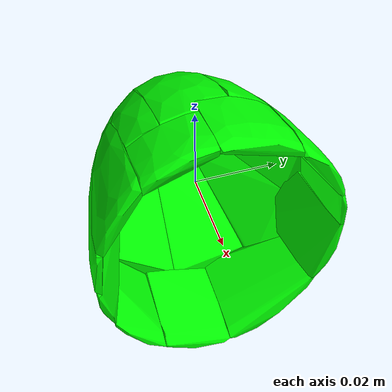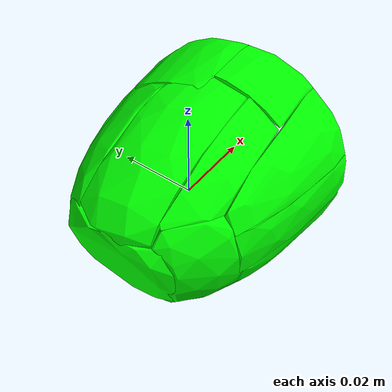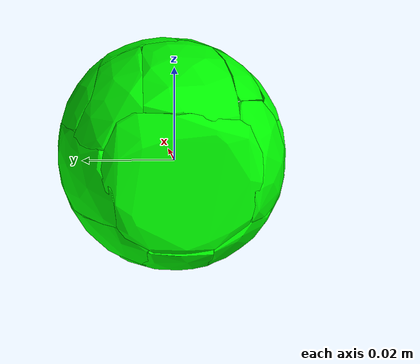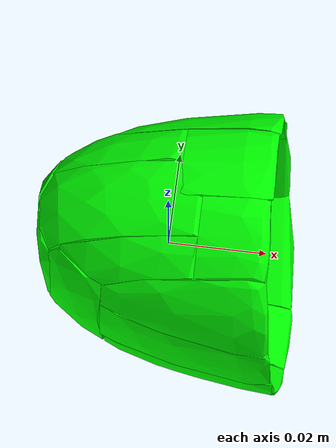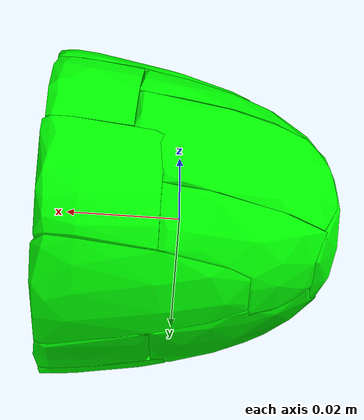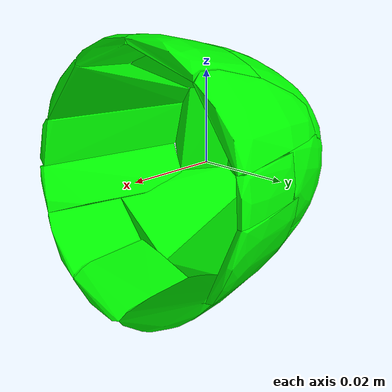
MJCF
<mujoco model="Glassbowl">
  <asset>
    <mesh file="meshes/Glassbowl/Glassbowl_0.stl" name="Glassbowl_0" scale="3 1.25 1.25"/>
    <mesh file="meshes/Glassbowl/Glassbowl_1.stl" name="Glassbowl_1" scale="3 1.25 1.25"/>
    <mesh file="meshes/Glassbowl/Glassbowl_2.stl" name="Glassbowl_2" scale="3 1.25 1.25"/>
    <mesh file="meshes/Glassbowl/Glassbowl_3.stl" name="Glassbowl_3" scale="3 1.25 1.25"/>
    <mesh file="meshes/Glassbowl/Glassbowl_4.stl" name="Glassbowl_4" scale="3 1.25 1.25"/>
    <mesh file="meshes/Glassbowl/Glassbowl_5.stl" name="Glassbowl_5" scale="3 1.25 1.25"/>
    <mesh file="meshes/Glassbowl/Glassbowl_6.stl" name="Glassbowl_6" scale="3 1.25 1.25"/>
    <mesh file="meshes/Glassbowl/Glassbowl_7.stl" name="Glassbowl_7" scale="3 1.25 1.25"/>
    <mesh file="meshes/Glassbowl/Glassbowl_8.stl" name="Glassbowl_8" scale="3 1.25 1.25"/>
    <mesh file="meshes/Glassbowl/Glassbowl_9.stl" name="Glassbowl_9" scale="3 1.25 1.25"/>
    <mesh file="meshes/Glassbowl/Glassbowl_10.stl" name="Glassbowl_10" scale="3 1.25 1.25"/>
    <mesh file="meshes/Glassbowl/Glassbowl_11.stl" name="Glassbowl_11" scale="3 1.25 1.25"/>
    <mesh file="meshes/Glassbowl/Glassbowl_12.stl" name="Glassbowl_12" scale="3 1.25 1.25"/>
    <mesh file="meshes/Glassbowl/Glassbowl_13.stl" name="Glassbowl_13" scale="3 1.25 1.25"/>
    <mesh file="meshes/Glassbowl/Glassbowl_14.stl" name="Glassbowl_14" scale="3 1.25 1.25"/>
    <mesh file="meshes/Glassbowl/Glassbowl_15.stl" name="Glassbowl_15" scale="3 1.25 1.25"/>
    <mesh file="meshes/Glassbowl/Glassbowl_16.stl" name="Glassbowl_16" scale="3 1.25 1.25"/>
    <mesh file="meshes/Glassbowl/Glassbowl_17.stl" name="Glassbowl_17" scale="3 1.25 1.25"/>
    <mesh file="meshes/Glassbowl/Glassbowl_18.stl" name="Glassbowl_18" scale="3 1.25 1.25"/>
    <mesh file="meshes/Glassbowl/Glassbowl_19.stl" name="Glassbowl_19" scale="3 1.25 1.25"/>
  </asset>
  <worldbody>
    <body>
      <body name="collision">
        <geom condim="4" density="100" friction="1.8 0.3 0.1" group="1" mesh="Glassbowl_0" pos="0 0 0" rgba="0 1 0 1" solimp="0.998 0.998 0.001" solref="0.002 1" type="mesh"/>
        <geom condim="4" density="100" friction="1.8 0.3 0.1" group="1" mesh="Glassbowl_1" pos="0 0 0" rgba="0 1 0 1" solimp="0.998 0.998 0.001" solref="0.002 1" type="mesh"/>
        <geom condim="4" density="100" friction="1.8 0.3 0.1" group="1" mesh="Glassbowl_2" pos="0 0 0" rgba="0 1 0 1" solimp="0.998 0.998 0.001" solref="0.002 1" type="mesh"/>
        <geom condim="4" density="100" friction="1.8 0.3 0.1" group="1" mesh="Glassbowl_3" pos="0 0 0" rgba="0 1 0 1" solimp="0.998 0.998 0.001" solref="0.002 1" type="mesh"/>
        <geom condim="4" density="100" friction="1.8 0.3 0.1" group="1" mesh="Glassbowl_4" pos="0 0 0" rgba="0 1 0 1" solimp="0.998 0.998 0.001" solref="0.002 1" type="mesh"/>
        <geom condim="4" density="100" friction="1.8 0.3 0.1" group="1" mesh="Glassbowl_5" pos="0 0 0" rgba="0 1 0 1" solimp="0.998 0.998 0.001" solref="0.002 1" type="mesh"/>
        <geom condim="4" density="100" friction="1.8 0.3 0.1" group="1" mesh="Glassbowl_6" pos="0 0 0" rgba="0 1 0 1" solimp="0.998 0.998 0.001" solref="0.002 1" type="mesh"/>
        <geom condim="4" density="100" friction="1.8 0.3 0.1" group="1" mesh="Glassbowl_7" pos="0 0 0" rgba="0 1 0 1" solimp="0.998 0.998 0.001" solref="0.002 1" type="mesh"/>
        <geom condim="4" density="100" friction="1.8 0.3 0.1" group="1" mesh="Glassbowl_8" pos="0 0 0" rgba="0 1 0 1" solimp="0.998 0.998 0.001" solref="0.002 1" type="mesh"/>
        <geom condim="4" density="100" friction="1.8 0.3 0.1" group="1" mesh="Glassbowl_9" pos="0 0 0" rgba="0 1 0 1" solimp="0.998 0.998 0.001" solref="0.002 1" type="mesh"/>
        <geom condim="4" density="100" friction="1.8 0.3 0.1" group="1" mesh="Glassbowl_10" pos="0 0 0" rgba="0 1 0 1" solimp="0.998 0.998 0.001" solref="0.002 1" type="mesh"/>
        <geom condim="4" density="100" friction="1.8 0.3 0.1" group="1" mesh="Glassbowl_11" pos="0 0 0" rgba="0 1 0 1" solimp="0.998 0.998 0.001" solref="0.002 1" type="mesh"/>
        <geom condim="4" density="100" friction="1.8 0.3 0.1" group="1" mesh="Glassbowl_12" pos="0 0 0" rgba="0 1 0 1" solimp="0.998 0.998 0.001" solref="0.002 1" type="mesh"/>
        <geom condim="4" density="100" friction="1.8 0.3 0.1" group="1" mesh="Glassbowl_13" pos="0 0 0" rgba="0 1 0 1" solimp="0.998 0.998 0.001" solref="0.002 1" type="mesh"/>
        <geom condim="4" density="100" friction="1.8 0.3 0.1" group="1" mesh="Glassbowl_14" pos="0 0 0" rgba="0 1 0 1" solimp="0.998 0.998 0.001" solref="0.002 1" type="mesh"/>
        <geom condim="4" density="100" friction="1.8 0.3 0.1" group="1" mesh="Glassbowl_15" pos="0 0 0" rgba="0 1 0 1" solimp="0.998 0.998 0.001" solref="0.002 1" type="mesh"/>
        <geom condim="4" density="100" friction="1.8 0.3 0.1" group="1" mesh="Glassbowl_16" pos="0 0 0" rgba="0 1 0 1" solimp="0.998 0.998 0.001" solref="0.002 1" type="mesh"/>
        <geom condim="4" density="100" friction="1.8 0.3 0.1" group="1" mesh="Glassbowl_17" pos="0 0 0" rgba="0 1 0 1" solimp="0.998 0.998 0.001" solref="0.002 1" type="mesh"/>
        <geom condim="4" density="100" friction="1.8 0.3 0.1" group="1" mesh="Glassbowl_18" pos="0 0 0" rgba="0 1 0 1" solimp="0.998 0.998 0.001" solref="0.002 1" type="mesh"/>
        <geom condim="4" density="100" friction="1.8 0.3 0.1" group="1" mesh="Glassbowl_19" pos="0 0 0" rgba="0 1 0 1" solimp="0.998 0.998 0.001" solref="0.002 1" type="mesh"/>
      </body>
      <body name="visual">
        <geom conaffinity="0" contype="0" group="0" mass="0.0001" mesh="Glassbowl_0" pos="0 0 0" rgba="0 1 0 1" type="mesh"/>
        <geom conaffinity="0" contype="0" group="0" mass="0.0001" mesh="Glassbowl_1" pos="0 0 0" rgba="0 1 0 1" type="mesh"/>
        <geom conaffinity="0" contype="0" group="0" mass="0.0001" mesh="Glassbowl_2" pos="0 0 0" rgba="0 1 0 1" type="mesh"/>
        <geom conaffinity="0" contype="0" group="0" mass="0.0001" mesh="Glassbowl_3" pos="0 0 0" rgba="0 1 0 1" type="mesh"/>
        <geom conaffinity="0" contype="0" group="0" mass="0.0001" mesh="Glassbowl_4" pos="0 0 0" rgba="0 1 0 1" type="mesh"/>
        <geom conaffinity="0" contype="0" group="0" mass="0.0001" mesh="Glassbowl_5" pos="0 0 0" rgba="0 1 0 1" type="mesh"/>
        <geom conaffinity="0" contype="0" group="0" mass="0.0001" mesh="Glassbowl_6" pos="0 0 0" rgba="0 1 0 1" type="mesh"/>
        <geom conaffinity="0" contype="0" group="0" mass="0.0001" mesh="Glassbowl_7" pos="0 0 0" rgba="0 1 0 1" type="mesh"/>
        <geom conaffinity="0" contype="0" group="0" mass="0.0001" mesh="Glassbowl_8" pos="0 0 0" rgba="0 1 0 1" type="mesh"/>
        <geom conaffinity="0" contype="0" group="0" mass="0.0001" mesh="Glassbowl_9" pos="0 0 0" rgba="0 1 0 1" type="mesh"/>
        <geom conaffinity="0" contype="0" group="0" mass="0.0001" mesh="Glassbowl_10" pos="0 0 0" rgba="0 1 0 1" type="mesh"/>
        <geom conaffinity="0" contype="0" group="0" mass="0.0001" mesh="Glassbowl_11" pos="0 0 0" rgba="0 1 0 1" type="mesh"/>
        <geom conaffinity="0" contype="0" group="0" mass="0.0001" mesh="Glassbowl_12" pos="0 0 0" rgba="0 1 0 1" type="mesh"/>
        <geom conaffinity="0" contype="0" group="0" mass="0.0001" mesh="Glassbowl_13" pos="0 0 0" rgba="0 1 0 1" type="mesh"/>
        <geom conaffinity="0" contype="0" group="0" mass="0.0001" mesh="Glassbowl_14" pos="0 0 0" rgba="0 1 0 1" type="mesh"/>
        <geom conaffinity="0" contype="0" group="0" mass="0.0001" mesh="Glassbowl_15" pos="0 0 0" rgba="0 1 0 1" type="mesh"/>
        <geom conaffinity="0" contype="0" group="0" mass="0.0001" mesh="Glassbowl_16" pos="0 0 0" rgba="0 1 0 1" type="mesh"/>
        <geom conaffinity="0" contype="0" group="0" mass="0.0001" mesh="Glassbowl_17" pos="0 0 0" rgba="0 1 0 1" type="mesh"/>
        <geom conaffinity="0" contype="0" group="0" mass="0.0001" mesh="Glassbowl_18" pos="0 0 0" rgba="0 1 0 1" type="mesh"/>
        <geom conaffinity="0" contype="0" group="0" mass="0.0001" mesh="Glassbowl_19" pos="0 0 0" rgba="0 1 0 1" type="mesh"/>
      </body>
      <site name="bottom_site" pos="0 0 -0.06" rgba="0 0 0 0" size="0.005"/>
      <site name="top_site" pos="0 0 0.04" rgba="0 0 0 0" size="0.005"/>
      <site name="horizontal_radius_site" pos="0.025 0.025 0" rgba="0 0 0 0" size="0.005"/>
    </body>
  </worldbody>
</mujoco>
